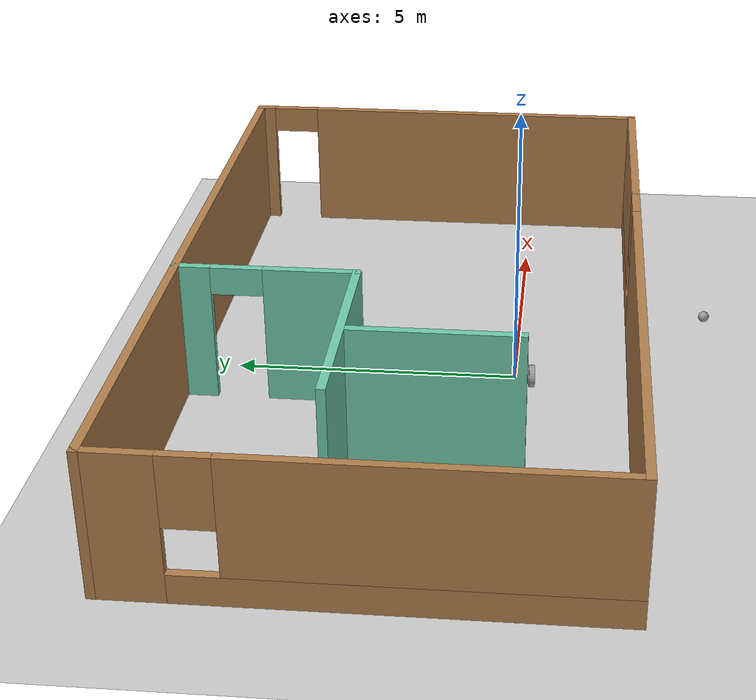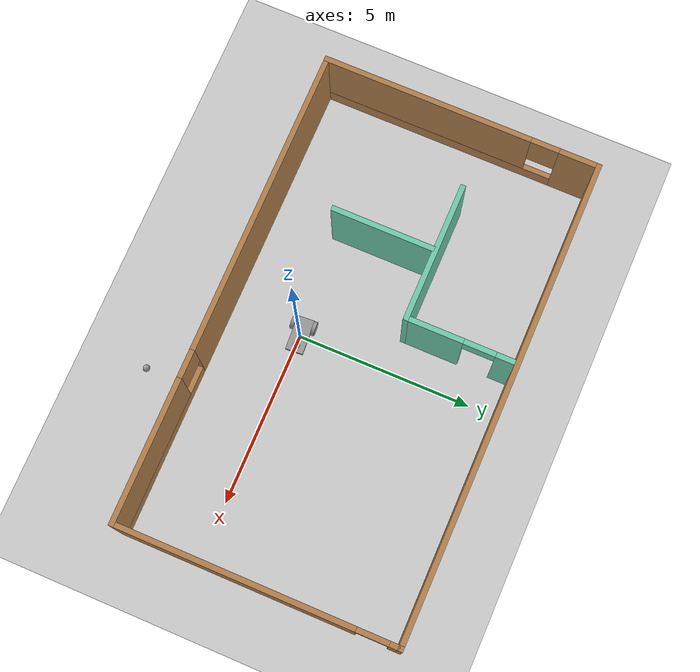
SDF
<sdf version="1.7">
 <world name="default">
  <plugin name="welcome_message" filename="libwelcome_message.so"/>
  <light name="sun" type="directional">
   <pose>0 0 10 0 -0 0</pose>
   <diffuse>0.8 0.8 0.8 1</diffuse>
   <specular>0.2 0.2 0.2 1</specular>
   <attenuation>
    <range>1000</range>
    <constant>0.9</constant>
    <linear>0.01</linear>
    <quadratic>0.001</quadratic>
   </attenuation>
   <direction>-0.5 0.1 -0.9</direction>
   <spot><inner_angle>0</inner_angle><outer_angle>0</outer_angle><falloff>0</falloff></spot>
  </light>
  <model name="ground_plane">
   <static>1</static>
   <link name="link">
    <collision name="collision">
     <geometry><plane><normal>0 0 1</normal><size>100 100</size></plane></geometry>
     <surface>
      <contact><collide_bitmask>65535</collide_bitmask></contact>
      <friction><ode><mu>100</mu><mu2>50</mu2></ode></friction>
     </surface>
    </collision>
    <visual name="visual">
     <cast_shadows>0</cast_shadows>
     <geometry><plane><normal>0 0 1</normal><size>100 100</size></plane></geometry>
     <material>
      <script><uri>file://media/materials/scripts/gazebo.material</uri><name>Gazebo/Grey</name></script>
     </material>
    </visual>
   </link>
  </model>
  <gravity>0 0 -9.8</gravity>
  <magnetic_field>6e-06 2.3e-05 -4.2e-05</magnetic_field>
  <atmosphere type="adiabatic"/>
  <physics type="ode">
   <max_step_size>0.001</max_step_size>
   <real_time_factor>1</real_time_factor>
   <real_time_update_rate>1000</real_time_update_rate>
  </physics>
  <scene><ambient>0.4 0.4 0.4 1</ambient><background>0.7 0.7 0.7 1</background><shadows>1</shadows></scene>
  <spherical_coordinates>
   <surface_model>EARTH_WGS84</surface_model>
   <latitude_deg>0</latitude_deg>
   <longitude_deg>0</longitude_deg>
   <elevation>0</elevation>
   <heading_deg>0</heading_deg>
  </spherical_coordinates>
  <model name="mobilerobot">
   <link name="link_0">
    <inertial>
     <mass>1</mass>
     <inertia>
      <ixx>0.166667</ixx>
      <ixy>0</ixy>
      <ixz>0</ixz>
      <iyy>0.166667</iyy>
      <iyz>0</iyz>
      <izz>0.166667</izz>
     </inertia>
    </inertial>
    <pose>0 0 0.2 0 -0 0</pose>
    <visual name="visual">
     <geometry><box><size>1 0.5 0.1</size></box></geometry>
     <material>
      <lighting>1</lighting>
      <script><uri>file://media/materials/scripts/gazebo.material</uri><name>Gazebo/Grey</name></script>
      <shader type="pixel"><normal_map>__default__</normal_map></shader>
      <ambient>0.3 0.3 0.3 1</ambient>
      <diffuse>0.7 0.7 0.7 1</diffuse>
      <specular>0.01 0.01 0.01 1</specular>
      <emissive>0 0 0 1</emissive>
     </material>
    </visual>
    <collision name="collision">
     <geometry><box><size>1 0.5 0.1</size></box></geometry>
     <surface>
      <friction>
       <ode><mu>1</mu><mu2>1</mu2><fdir1>0 0 0</fdir1><slip1>0</slip1><slip2>0</slip2></ode>
       <torsional>
        <coefficient>1</coefficient>
        <patch_radius>0</patch_radius>
        <surface_radius>0</surface_radius>
        <use_patch_radius>1</use_patch_radius>
        <ode><slip>0</slip></ode>
       </torsional>
      </friction>
      <bounce><restitution_coefficient>0</restitution_coefficient><threshold>1e+06</threshold></bounce>
      <contact>
       <collide_without_contact>0</collide_without_contact>
       <collide_without_contact_bitmask>1</collide_without_contact_bitmask>
       <collide_bitmask>1</collide_bitmask>
       <ode>
        <soft_cfm>0</soft_cfm>
        <soft_erp>0.2</soft_erp>
        <kp>1e+13</kp>
        <kd>1</kd>
        <max_vel>0.01</max_vel>
        <min_depth>0</min_depth>
       </ode>
       <bullet>
        <split_impulse>1</split_impulse>
        <split_impulse_penetration_threshold>-0.01</split_impulse_penetration_threshold>
        <soft_cfm>0</soft_cfm>
        <soft_erp>0.2</soft_erp>
        <kp>1e+13</kp>
        <kd>1</kd>
       </bullet>
      </contact>
     </surface>
    </collision>
   </link>
   <link name="link_1">
    <inertial>
     <mass>1</mass>
     <inertia><ixx>0.145833</ixx><ixy>0</ixy><ixz>0</ixz><iyy>0.145833</iyy><iyz>0</iyz><izz>0.125</izz></inertia>
    </inertial>
    <pose>-0.3 -0.300159 0.2 1.57 -0 0</pose>
    <visual name="visual">
     <geometry><cylinder><radius>0.2</radius><length>0.1</length></cylinder></geometry>
     <material>
      <lighting>1</lighting>
      <script><uri>file://media/materials/scripts/gazebo.material</uri><name>Gazebo/Grey</name></script>
      <shader type="pixel"><normal_map>__default__</normal_map></shader>
      <ambient>0.3 0.3 0.3 1</ambient>
      <diffuse>0.7 0.7 0.7 1</diffuse>
      <specular>0.01 0.01 0.01 1</specular>
      <emissive>0 0 0 1</emissive>
     </material>
    </visual>
    <collision name="collision">
     <geometry><cylinder><radius>0.2</radius><length>0.1</length></cylinder></geometry>
     <surface>
      <friction>
       <ode><mu>1</mu><mu2>1</mu2><fdir1>0 0 0</fdir1><slip1>0</slip1><slip2>0</slip2></ode>
       <torsional>
        <coefficient>1</coefficient>
        <patch_radius>0</patch_radius>
        <surface_radius>0</surface_radius>
        <use_patch_radius>1</use_patch_radius>
        <ode><slip>0</slip></ode>
       </torsional>
      </friction>
      <bounce><restitution_coefficient>0</restitution_coefficient><threshold>1e+06</threshold></bounce>
      <contact>
       <collide_without_contact>0</collide_without_contact>
       <collide_without_contact_bitmask>1</collide_without_contact_bitmask>
       <collide_bitmask>1</collide_bitmask>
       <ode>
        <soft_cfm>0</soft_cfm>
        <soft_erp>0.2</soft_erp>
        <kp>1e+13</kp>
        <kd>1</kd>
        <max_vel>0.01</max_vel>
        <min_depth>0</min_depth>
       </ode>
       <bullet>
        <split_impulse>1</split_impulse>
        <split_impulse_penetration_threshold>-0.01</split_impulse_penetration_threshold>
        <soft_cfm>0</soft_cfm>
        <soft_erp>0.2</soft_erp>
        <kp>1e+13</kp>
        <kd>1</kd>
       </bullet>
      </contact>
     </surface>
    </collision>
   </link>
   <link name="link_1_clone">
    <inertial>
     <mass>1</mass>
     <inertia><ixx>0.145833</ixx><ixy>0</ixy><ixz>0</ixz><iyy>0.145833</iyy><iyz>0</iyz><izz>0.125</izz></inertia>
    </inertial>
    <pose>-0.3 0.300159 0.2 1.57 -0 0</pose>
    <visual name="visual">
     <geometry><cylinder><radius>0.2</radius><length>0.1</length></cylinder></geometry>
     <material>
      <lighting>1</lighting>
      <script><uri>file://media/materials/scripts/gazebo.material</uri><name>Gazebo/Grey</name></script>
      <shader type="pixel"><normal_map>__default__</normal_map></shader>
      <ambient>0.3 0.3 0.3 1</ambient>
      <diffuse>0.7 0.7 0.7 1</diffuse>
      <specular>0.01 0.01 0.01 1</specular>
      <emissive>0 0 0 1</emissive>
     </material>
    </visual>
    <collision name="collision">
     <geometry><cylinder><radius>0.2</radius><length>0.1</length></cylinder></geometry>
     <surface>
      <friction>
       <ode><mu>1</mu><mu2>1</mu2><fdir1>0 0 0</fdir1><slip1>0</slip1><slip2>0</slip2></ode>
       <torsional>
        <coefficient>1</coefficient>
        <patch_radius>0</patch_radius>
        <surface_radius>0</surface_radius>
        <use_patch_radius>1</use_patch_radius>
        <ode><slip>0</slip></ode>
       </torsional>
      </friction>
      <bounce><restitution_coefficient>0</restitution_coefficient><threshold>1e+06</threshold></bounce>
      <contact>
       <collide_without_contact>0</collide_without_contact>
       <collide_without_contact_bitmask>1</collide_without_contact_bitmask>
       <collide_bitmask>1</collide_bitmask>
       <ode>
        <soft_cfm>0</soft_cfm>
        <soft_erp>0.2</soft_erp>
        <kp>1e+13</kp>
        <kd>1</kd>
        <max_vel>0.01</max_vel>
        <min_depth>0</min_depth>
       </ode>
       <bullet>
        <split_impulse>1</split_impulse>
        <split_impulse_penetration_threshold>-0.01</split_impulse_penetration_threshold>
        <soft_cfm>0</soft_cfm>
        <soft_erp>0.2</soft_erp>
        <kp>1e+13</kp>
        <kd>1</kd>
       </bullet>
      </contact>
     </surface>
    </collision>
   </link>
   <link name="link_2">
    <inertial>
     <mass>1</mass>
     <inertia><ixx>0.1</ixx><ixy>0</ixy><ixz>0</ixz><iyy>0.1</iyy><iyz>0</iyz><izz>0.1</izz></inertia>
    </inertial>
    <pose>0.3 0 0.14 0 -0 0</pose>
    <visual name="visual">
     <geometry><sphere><radius>0.15</radius></sphere></geometry>
     <material>
      <lighting>1</lighting>
      <script><uri>file://media/materials/scripts/gazebo.material</uri><name>Gazebo/Grey</name></script>
      <shader type="pixel"><normal_map>__default__</normal_map></shader>
      <ambient>0.3 0.3 0.3 1</ambient>
      <diffuse>0.7 0.7 0.7 1</diffuse>
      <specular>0.01 0.01 0.01 1</specular>
      <emissive>0 0 0 1</emissive>
     </material>
    </visual>
    <collision name="collision">
     <geometry><sphere><radius>0.15</radius></sphere></geometry>
     <surface>
      <friction>
       <ode><mu>1</mu><mu2>1</mu2><fdir1>0 0 0</fdir1><slip1>0</slip1><slip2>0</slip2></ode>
       <torsional>
        <coefficient>1</coefficient>
        <patch_radius>0</patch_radius>
        <surface_radius>0</surface_radius>
        <use_patch_radius>1</use_patch_radius>
        <ode><slip>0</slip></ode>
       </torsional>
      </friction>
      <bounce><restitution_coefficient>0</restitution_coefficient><threshold>1e+06</threshold></bounce>
      <contact>
       <collide_without_contact>0</collide_without_contact>
       <collide_without_contact_bitmask>1</collide_without_contact_bitmask>
       <collide_bitmask>1</collide_bitmask>
       <ode>
        <soft_cfm>0</soft_cfm>
        <soft_erp>0.2</soft_erp>
        <kp>1e+13</kp>
        <kd>1</kd>
        <max_vel>0.01</max_vel>
        <min_depth>0</min_depth>
       </ode>
       <bullet>
        <split_impulse>1</split_impulse>
        <split_impulse_penetration_threshold>-0.01</split_impulse_penetration_threshold>
        <soft_cfm>0</soft_cfm>
        <soft_erp>0.2</soft_erp>
        <kp>1e+13</kp>
        <kd>1</kd>
       </bullet>
      </contact>
     </surface>
    </collision>
   </link>
   <joint name="link_0_JOINT_0" type="revolute">
    <parent>link_0</parent>
    <child>link_1</child>
    <axis>
     <xyz>0 0 1</xyz>
     <limit>
      <lower>-1.79769e+308</lower>
      <upper>1.79769e+308</upper>
      <effort>-1</effort>
      <velocity>-1</velocity>
     </limit>
     <dynamics>
      <spring_reference>0</spring_reference>
      <spring_stiffness>0</spring_stiffness>
      <damping>0</damping>
      <friction>0</friction>
     </dynamics>
    </axis>
    <physics>
     <ode><limit><cfm>0</cfm><erp>0.2</erp></limit><suspension><cfm>0</cfm><erp>0.2</erp></suspension></ode>
    </physics>
   </joint>
   <joint name="link_0_JOINT_1" type="revolute">
    <parent>link_0</parent>
    <child>link_1_clone</child>
    <axis>
     <xyz>0 0 1</xyz>
     <limit>
      <lower>-1.79769e+308</lower>
      <upper>1.79769e+308</upper>
      <effort>-1</effort>
      <velocity>-1</velocity>
     </limit>
     <dynamics>
      <spring_reference>0</spring_reference>
      <spring_stiffness>0</spring_stiffness>
      <damping>0</damping>
      <friction>0</friction>
     </dynamics>
    </axis>
    <physics>
     <ode><limit><cfm>0</cfm><erp>0.2</erp></limit><suspension><cfm>0</cfm><erp>0.2</erp></suspension></ode>
    </physics>
   </joint>
   <joint name="link_0_JOINT_2" type="ball">
    <parent>link_0</parent>
    <child>link_2</child>
    <physics>
     <ode><limit><cfm>0</cfm><erp>0.2</erp></limit><suspension><cfm>0</cfm><erp>0.2</erp></suspension></ode>
    </physics>
   </joint>
   <static>0</static>
   <pose>0.004358 0.012015 0.005043 2e-06 -0.016588 0.061773</pose>
  </model>
  <model name="MyBuilding">
   <pose>-0.042925 1.84585 0 0 -0 0</pose>
   <link name="Wall_1">
    <pose>0 -3.925 0 0 -0 0</pose>
    <visual name="Wall_1_Visual_0">
     <pose>-2.46166 0 1.25 0 -0 0</pose>
     <geometry><box><size>8.82667 0.15 2.5</size></box></geometry>
     <material>
      <script><uri>file://media/materials/scripts/gazebo.material</uri><name>Gazebo/Wood</name></script>
      <ambient>1 1 1 1</ambient>
     </material>
     <meta><layer>0</layer></meta>
    </visual>
    <collision name="Wall_1_Collision_0">
     <geometry><box><size>8.82667 0.15 2.5</size></box></geometry>
     <pose>-2.46166 0 1.25 0 -0 0</pose>
    </collision>
    <visual name="Wall_1_Visual_1">
     <pose>4.41334 0 0.25 0 -0 0</pose>
     <geometry><box><size>4.92333 0.15 0.5</size></box></geometry>
     <material>
      <script><uri>file://media/materials/scripts/gazebo.material</uri><name>Gazebo/Wood</name></script>
      <ambient>1 1 1 1</ambient>
     </material>
     <meta><layer>0</layer></meta>
    </visual>
    <collision name="Wall_1_Collision_1">
     <geometry><box><size>4.92333 0.15 0.5</size></box></geometry>
     <pose>4.41334 0 0.25 0 -0 0</pose>
    </collision>
    <visual name="Wall_1_Visual_2">
     <pose>4.81334 0 1.5 0 -0 0</pose>
     <geometry><box><size>4.12333 0.15 2</size></box></geometry>
     <material>
      <script><uri>file://media/materials/scripts/gazebo.material</uri><name>Gazebo/Wood</name></script>
      <ambient>1 1 1 1</ambient>
     </material>
     <meta><layer>0</layer></meta>
    </visual>
    <collision name="Wall_1_Collision_2">
     <geometry><box><size>4.12333 0.15 2</size></box></geometry>
     <pose>4.81334 0 1.5 0 -0 0</pose>
    </collision>
    <visual name="Wall_1_Visual_3">
     <pose>2.35168 0 1.9 0 -0 0</pose>
     <geometry><box><size>0.8 0.15 1.2</size></box></geometry>
     <material>
      <script><uri>file://media/materials/scripts/gazebo.material</uri><name>Gazebo/Wood</name></script>
      <ambient>1 1 1 1</ambient>
     </material>
     <meta><layer>0</layer></meta>
    </visual>
    <collision name="Wall_1_Collision_3">
     <geometry><box><size>0.8 0.15 1.2</size></box></geometry>
     <pose>2.35168 0 1.9 0 -0 0</pose>
    </collision>
   </link>
   <link name="Wall_11">
    <collision name="Wall_11_Collision">
     <geometry><box><size>3 0.15 2.5</size></box></geometry>
     <pose>0 0 1.25 0 -0 0</pose>
    </collision>
    <visual name="Wall_11_Visual">
     <pose>0 0 1.25 0 -0 0</pose>
     <geometry><box><size>3 0.15 2.5</size></box></geometry>
     <material>
      <script><uri>file://media/materials/scripts/gazebo.material</uri><name>Gazebo/Grey</name></script>
      <ambient>0.435294 0.796078 0.67451 1</ambient>
     </material>
     <meta><layer>0</layer></meta>
    </visual>
    <pose>-2.97842 -0.646354 0 0 -0 -1.5708</pose>
   </link>
   <link name="Wall_2">
    <pose>6.8 0 0 0 -0 1.5708</pose>
    <visual name="Wall_2_Visual_0">
     <pose>-0.63892 0 1.25 0 -0 0</pose>
     <geometry><box><size>6.72216 0.15 2.5</size></box></geometry>
     <material>
      <script><uri>file://media/materials/scripts/gazebo.material</uri><name>Gazebo/Wood</name></script>
      <ambient>1 1 1 1</ambient>
     </material>
     <meta><layer>0</layer></meta>
    </visual>
    <collision name="Wall_2_Collision_0">
     <geometry><box><size>6.72216 0.15 2.5</size></box></geometry>
     <pose>-0.63892 0 1.25 0 -0 0</pose>
    </collision>
    <visual name="Wall_2_Visual_1">
     <pose>3.81108 0 1.25 0 -0 0</pose>
     <geometry><box><size>0.377839 0.15 2.5</size></box></geometry>
     <material>
      <script><uri>file://media/materials/scripts/gazebo.material</uri><name>Gazebo/Wood</name></script>
      <ambient>1 1 1 1</ambient>
     </material>
     <meta><layer>0</layer></meta>
    </visual>
    <collision name="Wall_2_Collision_1">
     <geometry><box><size>0.377839 0.15 2.5</size></box></geometry>
     <pose>3.81108 0 1.25 0 -0 0</pose>
    </collision>
    <visual name="Wall_2_Visual_2">
     <pose>3.17216 0 2.25 0 -0 0</pose>
     <geometry><box><size>0.9 0.15 0.5</size></box></geometry>
     <material>
      <script><uri>file://media/materials/scripts/gazebo.material</uri><name>Gazebo/Wood</name></script>
      <ambient>1 1 1 1</ambient>
     </material>
     <meta><layer>0</layer></meta>
    </visual>
    <collision name="Wall_2_Collision_2">
     <geometry><box><size>0.9 0.15 0.5</size></box></geometry>
     <pose>3.17216 0 2.25 0 -0 0</pose>
    </collision>
   </link>
   <link name="Wall_3">
    <collision name="Wall_3_Collision">
     <geometry><box><size>13.75 0.15 2.5</size></box></geometry>
     <pose>0 0 1.25 0 -0 0</pose>
    </collision>
    <visual name="Wall_3_Visual">
     <pose>0 0 1.25 0 -0 0</pose>
     <geometry><box><size>13.75 0.15 2.5</size></box></geometry>
     <material>
      <script><uri>file://media/materials/scripts/gazebo.material</uri><name>Gazebo/Wood</name></script>
      <ambient>1 1 1 1</ambient>
     </material>
     <meta><layer>0</layer></meta>
    </visual>
    <pose>0 3.925 0 0 -0 3.14159</pose>
   </link>
   <link name="Wall_6">
    <pose>-6.8 0 0 0 -0 -1.5708</pose>
    <visual name="Wall_6_Visual_0">
     <pose>-3.40392 0 1.25 0 -0 0</pose>
     <geometry><box><size>1.19216 0.15 2.5</size></box></geometry>
     <material>
      <script><uri>file://media/materials/scripts/gazebo.material</uri><name>Gazebo/Wood</name></script>
      <ambient>1 1 1 1</ambient>
     </material>
     <meta><layer>0</layer></meta>
    </visual>
    <collision name="Wall_6_Collision_0">
     <geometry><box><size>1.19216 0.15 2.5</size></box></geometry>
     <pose>-3.40392 0 1.25 0 -0 0</pose>
    </collision>
    <visual name="Wall_6_Visual_1">
     <pose>0.596078 0 0.25 0 -0 0</pose>
     <geometry><box><size>6.80785 0.15 0.5</size></box></geometry>
     <material>
      <script><uri>file://media/materials/scripts/gazebo.material</uri><name>Gazebo/Wood</name></script>
      <ambient>1 1 1 1</ambient>
     </material>
     <meta><layer>0</layer></meta>
    </visual>
    <collision name="Wall_6_Collision_1">
     <geometry><box><size>6.80785 0.15 0.5</size></box></geometry>
     <pose>0.596078 0 0.25 0 -0 0</pose>
    </collision>
    <visual name="Wall_6_Visual_2">
     <pose>0.996078 0 1.5 0 -0 0</pose>
     <geometry><box><size>6.00784 0.15 2</size></box></geometry>
     <material>
      <script><uri>file://media/materials/scripts/gazebo.material</uri><name>Gazebo/Wood</name></script>
      <ambient>1 1 1 1</ambient>
     </material>
     <meta><layer>0</layer></meta>
    </visual>
    <collision name="Wall_6_Collision_2">
     <geometry><box><size>6.00784 0.15 2</size></box></geometry>
     <pose>0.996078 0 1.5 0 -0 0</pose>
    </collision>
    <visual name="Wall_6_Visual_3">
     <pose>-2.40785 0 1.9 0 -0 0</pose>
     <geometry><box><size>0.8 0.15 1.2</size></box></geometry>
     <material>
      <script><uri>file://media/materials/scripts/gazebo.material</uri><name>Gazebo/Wood</name></script>
      <ambient>1 1 1 1</ambient>
     </material>
     <meta><layer>0</layer></meta>
    </visual>
    <collision name="Wall_6_Collision_3">
     <geometry><box><size>0.8 0.15 1.2</size></box></geometry>
     <pose>-2.40785 0 1.9 0 -0 0</pose>
    </collision>
   </link>
   <link name="Wall_8">
    <pose>-0.987178 2.36636 0 0 -0 -1.5708</pose>
    <visual name="Wall_8_Visual_0">
     <pose>-1.28955 0 1.25 0 -0 0</pose>
     <geometry><box><size>0.670906 0.15 2.5</size></box></geometry>
     <material>
      <script><uri>file://media/materials/scripts/gazebo.material</uri><name>Gazebo/Grey</name></script>
      <ambient>0.435294 0.796078 0.67451 1</ambient>
     </material>
     <meta><layer>0</layer></meta>
    </visual>
    <collision name="Wall_8_Collision_0">
     <geometry><box><size>0.670906 0.15 2.5</size></box></geometry>
     <pose>-1.28955 0 1.25 0 -0 0</pose>
    </collision>
    <visual name="Wall_8_Visual_1">
     <pose>0.785453 0 1.25 0 -0 0</pose>
     <geometry><box><size>1.67909 0.15 2.5</size></box></geometry>
     <material>
      <script><uri>file://media/materials/scripts/gazebo.material</uri><name>Gazebo/Grey</name></script>
      <ambient>0.435294 0.796078 0.67451 1</ambient>
     </material>
     <meta><layer>0</layer></meta>
    </visual>
    <collision name="Wall_8_Collision_1">
     <geometry><box><size>1.67909 0.15 2.5</size></box></geometry>
     <pose>0.785453 0 1.25 0 -0 0</pose>
    </collision>
    <visual name="Wall_8_Visual_2">
     <pose>-0.504094 0 2.25 0 -0 0</pose>
     <geometry><box><size>0.9 0.15 0.5</size></box></geometry>
     <material>
      <script><uri>file://media/materials/scripts/gazebo.material</uri><name>Gazebo/Grey</name></script>
      <ambient>0.435294 0.796078 0.67451 1</ambient>
     </material>
     <meta><layer>0</layer></meta>
    </visual>
    <collision name="Wall_8_Collision_2">
     <geometry><box><size>0.9 0.15 0.5</size></box></geometry>
     <pose>-0.504094 0 2.25 0 -0 0</pose>
    </collision>
   </link>
   <link name="Wall_9">
    <collision name="Wall_9_Collision">
     <geometry><box><size>4 0.15 2.5</size></box></geometry>
     <pose>0 0 1.25 0 -0 0</pose>
    </collision>
    <visual name="Wall_9_Visual">
     <pose>0 0 1.25 0 -0 0</pose>
     <geometry><box><size>4 0.15 2.5</size></box></geometry>
     <material>
      <script><uri>file://media/materials/scripts/gazebo.material</uri><name>Gazebo/Grey</name></script>
      <ambient>0.435294 0.796078 0.67451 1</ambient>
     </material>
     <meta><layer>0</layer></meta>
    </visual>
    <pose>-2.91218 0.816363 0 0 -0 3.14159</pose>
   </link>
   <static>1</static>
  </model>
  <model name="my_ball_0">
   <link name="link_0">
    <inertial>
     <mass>1</mass>
     <inertia><ixx>0.1</ixx><ixy>0</ixy><ixz>0</ixz><iyy>0.1</iyy><iyz>0</iyz><izz>0.1</izz></inertia>
    </inertial>
    <visual name="visual">
     <geometry><sphere><radius>0.1</radius></sphere></geometry>
     <material>
      <lighting>1</lighting>
      <script><uri>file://media/materials/scripts/gazebo.material</uri><name>Gazebo/Grey</name></script>
      <shader type="pixel"><normal_map>__default__</normal_map></shader>
      <ambient>1 1 1 1</ambient>
      <diffuse>1 1 1 1</diffuse>
      <specular>1 1 1 1</specular>
      <emissive>1 1 1 1</emissive>
     </material>
    </visual>
    <collision name="collision">
     <geometry><sphere><radius>0.1</radius></sphere></geometry>
     <surface>
      <friction>
       <ode><mu>1</mu><mu2>1</mu2><fdir1>0 0 0</fdir1><slip1>0</slip1><slip2>0</slip2></ode>
       <torsional>
        <coefficient>1</coefficient>
        <patch_radius>0</patch_radius>
        <surface_radius>0</surface_radius>
        <use_patch_radius>1</use_patch_radius>
        <ode><slip>0</slip></ode>
       </torsional>
      </friction>
      <bounce><restitution_coefficient>0</restitution_coefficient><threshold>1e+06</threshold></bounce>
      <contact>
       <collide_without_contact>0</collide_without_contact>
       <collide_without_contact_bitmask>1</collide_without_contact_bitmask>
       <collide_bitmask>1</collide_bitmask>
       <ode>
        <soft_cfm>0</soft_cfm>
        <soft_erp>0.2</soft_erp>
        <kp>1e+13</kp>
        <kd>1</kd>
        <max_vel>0.01</max_vel>
        <min_depth>0</min_depth>
       </ode>
       <bullet>
        <split_impulse>1</split_impulse>
        <split_impulse_penetration_threshold>-0.01</split_impulse_penetration_threshold>
        <soft_cfm>0</soft_cfm>
        <soft_erp>0.2</soft_erp>
        <kp>1e+13</kp>
        <kd>1</kd>
       </bullet>
      </contact>
     </surface>
    </collision>
   </link>
   <static>0</static>
   <pose>2.47418 -3.50185 0.1 0 -0 0</pose>
  </model>
 </world>
</sdf>
